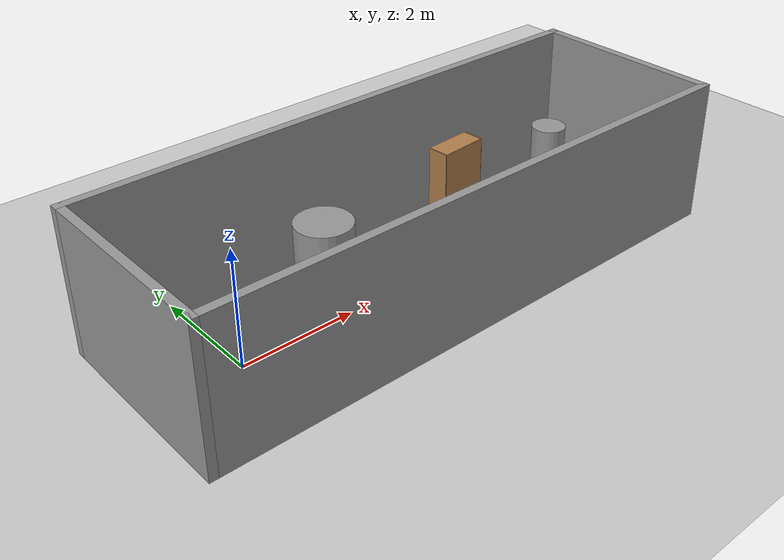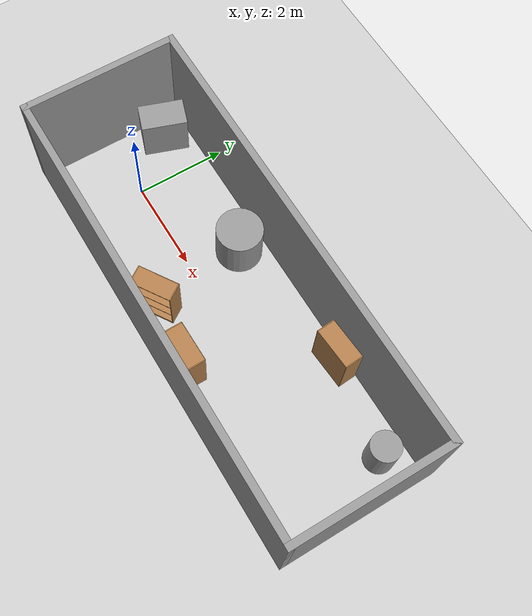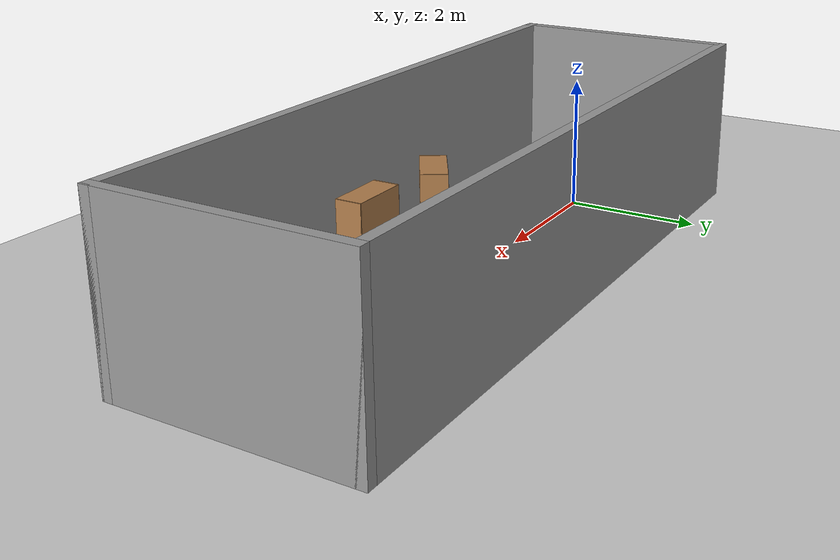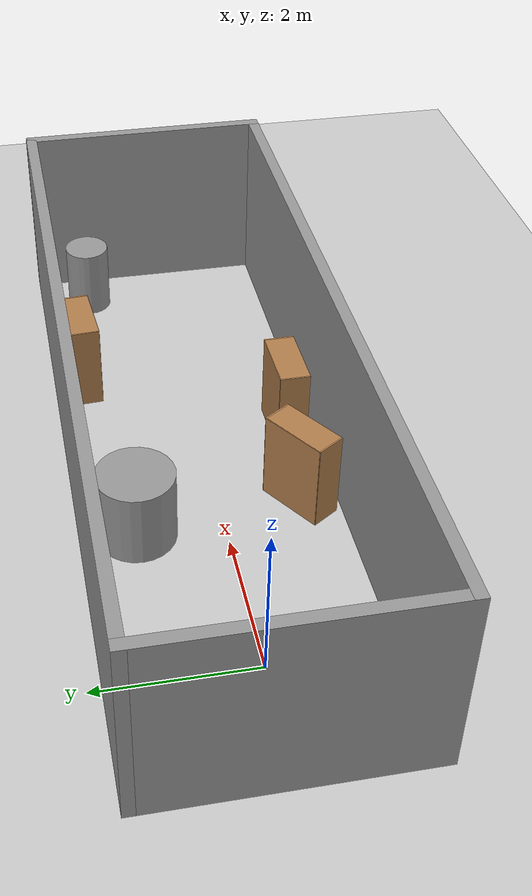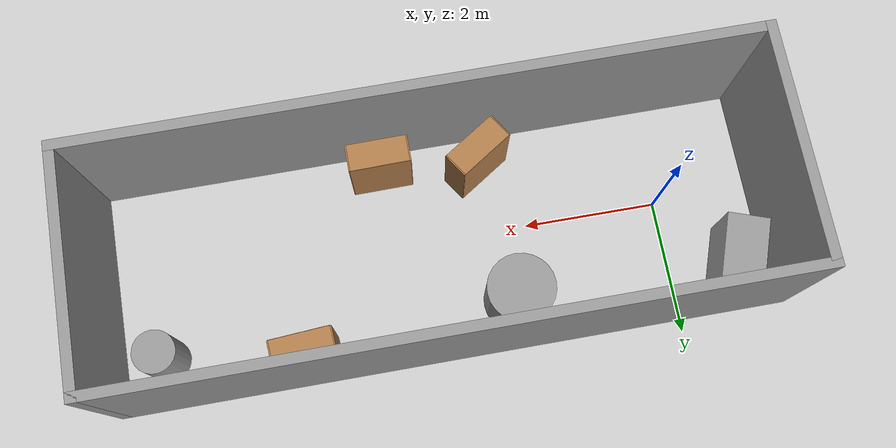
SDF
<sdf version="1.7">
 <world name="default">
  <light name="sun" type="directional">
   <pose>0 0 10 0 -0 0</pose>
   <diffuse>0.8 0.8 0.8 1</diffuse>
   <specular>0.2 0.2 0.2 1</specular>
   <attenuation>
    <range>1000</range>
    <constant>0.9</constant>
    <linear>0.01</linear>
    <quadratic>0.001</quadratic>
   </attenuation>
   <direction>-0.5 0.1 -0.9</direction>
   <spot><inner_angle>0</inner_angle><outer_angle>0</outer_angle><falloff>0</falloff></spot>
  </light>
  <model name="ground_plane">
   <static>1</static>
   <link name="link">
    <collision name="collision">
     <geometry><plane><normal>0 0 1</normal><size>100 100</size></plane></geometry>
     <surface>
      <contact><collide_bitmask>65535</collide_bitmask></contact>
      <friction><ode><mu>100</mu><mu2>50</mu2></ode></friction>
     </surface>
    </collision>
    <visual name="visual">
     <cast_shadows>0</cast_shadows>
     <geometry><plane><normal>0 0 1</normal><size>100 100</size></plane></geometry>
     <material>
      <script><uri>file://media/materials/scripts/gazebo.material</uri><name>Gazebo/Grey</name></script>
     </material>
    </visual>
   </link>
  </model>
  <gravity>0 0 -9.8</gravity>
  <magnetic_field>6e-06 2.3e-05 -4.2e-05</magnetic_field>
  <atmosphere type="adiabatic"/>
  <physics type="ode">
   <max_step_size>0.001</max_step_size>
   <real_time_factor>1</real_time_factor>
   <real_time_update_rate>1000</real_time_update_rate>
  </physics>
  <scene><ambient>0.4 0.4 0.4 1</ambient><background>0.7 0.7 0.7 1</background><shadows>1</shadows></scene>
  <spherical_coordinates>
   <surface_model>EARTH_WGS84</surface_model>
   <latitude_deg>0</latitude_deg>
   <longitude_deg>0</longitude_deg>
   <elevation>0</elevation>
   <heading_deg>0</heading_deg>
  </spherical_coordinates>
  <model name="corridor">
   <pose>3.39268 0.026906 0 0 0 -1.5708</pose>
   <link name="Wall_10">
    <collision name="Wall_10_Collision">
     <geometry><box><size>3.5 0.15 2.5</size></box></geometry>
     <pose>0 0 1.25 0 -0 0</pose>
    </collision>
    <visual name="Wall_10_Visual">
     <pose>0 0 1.25 0 -0 0</pose>
     <geometry><box><size>3.5 0.15 2.5</size></box></geometry>
     <material>
      <script><uri>file://media/materials/scripts/gazebo.material</uri><name>Gazebo/Grey</name></script>
      <ambient>1 1 1 1</ambient>
     </material>
     <meta><layer>0</layer></meta>
    </visual>
    <pose>-0.053915 -4.925 0 0 -0 3.14159</pose>
   </link>
   <link name="Wall_3">
    <collision name="Wall_3_Collision">
     <geometry><box><size>10 0.15 2.5</size></box></geometry>
     <pose>0 0 1.25 0 -0 0</pose>
    </collision>
    <visual name="Wall_3_Visual">
     <pose>0 0 1.25 0 -0 0</pose>
     <geometry><box><size>10 0.15 2.5</size></box></geometry>
     <material>
      <script><uri>file://media/materials/scripts/gazebo.material</uri><name>Gazebo/Grey</name></script>
      <ambient>1 1 1 1</ambient>
     </material>
     <meta><layer>0</layer></meta>
    </visual>
    <pose>-1.72891 0 0 0 -0 -1.5708</pose>
   </link>
   <link name="Wall_8">
    <collision name="Wall_8_Collision">
     <geometry><box><size>3.5 0.15 2.5</size></box></geometry>
     <pose>0 0 1.25 0 -0 0</pose>
    </collision>
    <visual name="Wall_8_Visual">
     <pose>0 0 1.25 0 -0 0</pose>
     <geometry><box><size>3.5 0.15 2.5</size></box></geometry>
     <material>
      <script><uri>file://media/materials/scripts/gazebo.material</uri><name>Gazebo/Grey</name></script>
      <ambient>1 1 1 1</ambient>
     </material>
     <meta><layer>0</layer></meta>
    </visual>
    <pose>-0.053915 4.925 0 0 -0 0</pose>
   </link>
   <link name="Wall_9">
    <collision name="Wall_9_Collision">
     <geometry><box><size>10 0.15 2.5</size></box></geometry>
     <pose>0 0 1.25 0 -0 0</pose>
    </collision>
    <visual name="Wall_9_Visual">
     <pose>0 0 1.25 0 -0 0</pose>
     <geometry><box><size>10 0.15 2.5</size></box></geometry>
     <material>
      <script><uri>file://media/materials/scripts/gazebo.material</uri><name>Gazebo/Grey</name></script>
      <ambient>1 1 1 1</ambient>
     </material>
     <meta><layer>0</layer></meta>
    </visual>
    <pose>1.62109 0 0 0 -0 -1.5708</pose>
   </link>
   <static>1</static>
  </model>
  <model name="bookshelf">
   <static>1</static>
   <link name="link">
    <inertial><mass>1</mass></inertial>
    <collision name="back">
     <pose>0 0.005 0.6 0 -0 0</pose>
     <geometry><box><size>0.9 0.01 1.2</size></box></geometry>
    </collision>
    <visual name="visual1">
     <pose>0 0.005 0.6 0 -0 0</pose>
     <geometry><box><size>0.9 0.01 1.2</size></box></geometry>
     <material>
      <script><uri>file://media/materials/scripts/gazebo.material</uri><name>Gazebo/Wood</name></script>
     </material>
    </visual>
    <collision name="left_side">
     <pose>0.45 -0.195 0.6 0 -0 0</pose>
     <geometry><box><size>0.02 0.4 1.2</size></box></geometry>
    </collision>
    <visual name="visual2">
     <pose>0.45 -0.195 0.6 0 -0 0</pose>
     <geometry><box><size>0.02 0.4 1.2</size></box></geometry>
     <material>
      <script><uri>file://media/materials/scripts/gazebo.material</uri><name>Gazebo/Wood</name></script>
     </material>
    </visual>
    <collision name="right_side">
     <pose>-0.45 -0.195 0.6 0 -0 0</pose>
     <geometry><box><size>0.02 0.4 1.2</size></box></geometry>
    </collision>
    <visual name="visual3">
     <pose>-0.45 -0.195 0.6 0 -0 0</pose>
     <geometry><box><size>0.02 0.4 1.2</size></box></geometry>
     <material>
      <script><uri>file://media/materials/scripts/gazebo.material</uri><name>Gazebo/Wood</name></script>
     </material>
    </visual>
    <collision name="bottom">
     <pose>0 -0.195 0.03 0 -0 0</pose>
     <geometry><box><size>0.88 0.4 0.06</size></box></geometry>
    </collision>
    <visual name="visual4">
     <pose>0 -0.195 0.03 0 -0 0</pose>
     <geometry><box><size>0.88 0.4 0.06</size></box></geometry>
     <material>
      <script><uri>file://media/materials/scripts/gazebo.material</uri><name>Gazebo/Wood</name></script>
     </material>
    </visual>
    <collision name="top">
     <pose>0 -0.195 1.19 0 -0 0</pose>
     <geometry><box><size>0.88 0.4 0.02</size></box></geometry>
    </collision>
    <visual name="visual5">
     <pose>0 -0.195 1.19 0 -0 0</pose>
     <geometry><box><size>0.88 0.4 0.02</size></box></geometry>
     <material>
      <script><uri>file://media/materials/scripts/gazebo.material</uri><name>Gazebo/Wood</name></script>
     </material>
    </visual>
    <collision name="low_shelf">
     <pose>0 -0.195 0.43 0 -0 0</pose>
     <geometry><box><size>0.88 0.4 0.02</size></box></geometry>
    </collision>
    <visual name="visual6">
     <pose>0 -0.195 0.43 0 -0 0</pose>
     <geometry><box><size>0.88 0.4 0.02</size></box></geometry>
     <material>
      <script><uri>file://media/materials/scripts/gazebo.material</uri><name>Gazebo/Wood</name></script>
     </material>
    </visual>
    <collision name="high_shelf">
     <pose>0 -0.195 0.8 0 -0 0</pose>
     <geometry><box><size>0.88 0.4 0.02</size></box></geometry>
    </collision>
    <visual name="visual7">
     <pose>0 -0.195 0.8 0 -0 0</pose>
     <geometry><box><size>0.88 0.4 0.02</size></box></geometry>
     <material>
      <script><uri>file://media/materials/scripts/gazebo.material</uri><name>Gazebo/Wood</name></script>
     </material>
    </visual>
   </link>
   <pose>5.54397 1.23318 0 0 0 -3.07423</pose>
  </model>
  <model name="bookshelf_0">
   <static>1</static>
   <link name="link">
    <inertial><mass>1</mass></inertial>
    <collision name="back">
     <pose>0 0.005 0.6 0 -0 0</pose>
     <geometry><box><size>0.9 0.01 1.2</size></box></geometry>
    </collision>
    <visual name="visual1">
     <pose>0 0.005 0.6 0 -0 0</pose>
     <geometry><box><size>0.9 0.01 1.2</size></box></geometry>
     <material>
      <script><uri>file://media/materials/scripts/gazebo.material</uri><name>Gazebo/Wood</name></script>
     </material>
    </visual>
    <collision name="left_side">
     <pose>0.45 -0.195 0.6 0 -0 0</pose>
     <geometry><box><size>0.02 0.4 1.2</size></box></geometry>
    </collision>
    <visual name="visual2">
     <pose>0.45 -0.195 0.6 0 -0 0</pose>
     <geometry><box><size>0.02 0.4 1.2</size></box></geometry>
     <material>
      <script><uri>file://media/materials/scripts/gazebo.material</uri><name>Gazebo/Wood</name></script>
     </material>
    </visual>
    <collision name="right_side">
     <pose>-0.45 -0.195 0.6 0 -0 0</pose>
     <geometry><box><size>0.02 0.4 1.2</size></box></geometry>
    </collision>
    <visual name="visual3">
     <pose>-0.45 -0.195 0.6 0 -0 0</pose>
     <geometry><box><size>0.02 0.4 1.2</size></box></geometry>
     <material>
      <script><uri>file://media/materials/scripts/gazebo.material</uri><name>Gazebo/Wood</name></script>
     </material>
    </visual>
    <collision name="bottom">
     <pose>0 -0.195 0.03 0 -0 0</pose>
     <geometry><box><size>0.88 0.4 0.06</size></box></geometry>
    </collision>
    <visual name="visual4">
     <pose>0 -0.195 0.03 0 -0 0</pose>
     <geometry><box><size>0.88 0.4 0.06</size></box></geometry>
     <material>
      <script><uri>file://media/materials/scripts/gazebo.material</uri><name>Gazebo/Wood</name></script>
     </material>
    </visual>
    <collision name="top">
     <pose>0 -0.195 1.19 0 -0 0</pose>
     <geometry><box><size>0.88 0.4 0.02</size></box></geometry>
    </collision>
    <visual name="visual5">
     <pose>0 -0.195 1.19 0 -0 0</pose>
     <geometry><box><size>0.88 0.4 0.02</size></box></geometry>
     <material>
      <script><uri>file://media/materials/scripts/gazebo.material</uri><name>Gazebo/Wood</name></script>
     </material>
    </visual>
    <collision name="low_shelf">
     <pose>0 -0.195 0.43 0 -0 0</pose>
     <geometry><box><size>0.88 0.4 0.02</size></box></geometry>
    </collision>
    <visual name="visual6">
     <pose>0 -0.195 0.43 0 -0 0</pose>
     <geometry><box><size>0.88 0.4 0.02</size></box></geometry>
     <material>
      <script><uri>file://media/materials/scripts/gazebo.material</uri><name>Gazebo/Wood</name></script>
     </material>
    </visual>
    <collision name="high_shelf">
     <pose>0 -0.195 0.8 0 -0 0</pose>
     <geometry><box><size>0.88 0.4 0.02</size></box></geometry>
    </collision>
    <visual name="visual7">
     <pose>0 -0.195 0.8 0 -0 0</pose>
     <geometry><box><size>0.88 0.4 0.02</size></box></geometry>
     <material>
      <script><uri>file://media/materials/scripts/gazebo.material</uri><name>Gazebo/Wood</name></script>
     </material>
    </visual>
   </link>
   <pose>4.04178 -0.97208 0 0 -0 0.010569</pose>
  </model>
  <model name="unit_box">
   <pose>-0.93058 1.10742 0.5 0 -0 -0.334426</pose>
   <link name="link">
    <inertial>
     <mass>1</mass>
     <inertia>
      <ixx>0.166667</ixx>
      <ixy>0</ixy>
      <ixz>0</ixz>
      <iyy>0.166667</iyy>
      <iyz>0</iyz>
      <izz>0.166667</izz>
     </inertia>
    </inertial>
    <collision name="collision"><geometry><box><size>0.616112 1 1</size></box></geometry></collision>
    <visual name="visual">
     <geometry><box><size>0.616112 1 1</size></box></geometry>
     <material>
      <script><name>Gazebo/Grey</name><uri>file://media/materials/scripts/gazebo.material</uri></script>
     </material>
    </visual>
   </link>
  </model>
  <model name="unit_cylinder">
   <pose>7.6063 1.10026 0.499992 0 -0 0</pose>
   <link name="link">
    <inertial>
     <mass>1</mass>
     <inertia><ixx>0.145833</ixx><ixy>0</ixy><ixz>0</ixz><iyy>0.145833</iyy><iyz>0</iyz><izz>0.125</izz></inertia>
    </inertial>
    <collision name="collision">
     <geometry><cylinder><radius>0.31275</radius><length>1</length></cylinder></geometry>
    </collision>
    <visual name="visual">
     <geometry><cylinder><radius>0.31275</radius><length>1</length></cylinder></geometry>
     <material>
      <script><name>Gazebo/Grey</name><uri>file://media/materials/scripts/gazebo.material</uri></script>
     </material>
    </visual>
   </link>
  </model>
  <model name="bookshelf_0_clone">
   <static>1</static>
   <link name="link">
    <inertial><mass>1</mass></inertial>
    <collision name="back">
     <pose>0 0.005 0.6 0 -0 0</pose>
     <geometry><box><size>0.9 0.01 1.2</size></box></geometry>
    </collision>
    <visual name="visual1">
     <pose>0 0.005 0.6 0 -0 0</pose>
     <geometry><box><size>0.9 0.01 1.2</size></box></geometry>
     <material>
      <script><uri>file://media/materials/scripts/gazebo.material</uri><name>Gazebo/Wood</name></script>
     </material>
    </visual>
    <collision name="left_side">
     <pose>0.45 -0.195 0.6 0 -0 0</pose>
     <geometry><box><size>0.02 0.4 1.2</size></box></geometry>
    </collision>
    <visual name="visual2">
     <pose>0.45 -0.195 0.6 0 -0 0</pose>
     <geometry><box><size>0.02 0.4 1.2</size></box></geometry>
     <material>
      <script><uri>file://media/materials/scripts/gazebo.material</uri><name>Gazebo/Wood</name></script>
     </material>
    </visual>
    <collision name="right_side">
     <pose>-0.45 -0.195 0.6 0 -0 0</pose>
     <geometry><box><size>0.02 0.4 1.2</size></box></geometry>
    </collision>
    <visual name="visual3">
     <pose>-0.45 -0.195 0.6 0 -0 0</pose>
     <geometry><box><size>0.02 0.4 1.2</size></box></geometry>
     <material>
      <script><uri>file://media/materials/scripts/gazebo.material</uri><name>Gazebo/Wood</name></script>
     </material>
    </visual>
    <collision name="bottom">
     <pose>0 -0.195 0.03 0 -0 0</pose>
     <geometry><box><size>0.88 0.4 0.06</size></box></geometry>
    </collision>
    <visual name="visual4">
     <pose>0 -0.195 0.03 0 -0 0</pose>
     <geometry><box><size>0.88 0.4 0.06</size></box></geometry>
     <material>
      <script><uri>file://media/materials/scripts/gazebo.material</uri><name>Gazebo/Wood</name></script>
     </material>
    </visual>
    <collision name="top">
     <pose>0 -0.195 1.19 0 -0 0</pose>
     <geometry><box><size>0.88 0.4 0.02</size></box></geometry>
    </collision>
    <visual name="visual5">
     <pose>0 -0.195 1.19 0 -0 0</pose>
     <geometry><box><size>0.88 0.4 0.02</size></box></geometry>
     <material>
      <script><uri>file://media/materials/scripts/gazebo.material</uri><name>Gazebo/Wood</name></script>
     </material>
    </visual>
    <collision name="low_shelf">
     <pose>0 -0.195 0.43 0 -0 0</pose>
     <geometry><box><size>0.88 0.4 0.02</size></box></geometry>
    </collision>
    <visual name="visual6">
     <pose>0 -0.195 0.43 0 -0 0</pose>
     <geometry><box><size>0.88 0.4 0.02</size></box></geometry>
     <material>
      <script><uri>file://media/materials/scripts/gazebo.material</uri><name>Gazebo/Wood</name></script>
     </material>
    </visual>
    <collision name="high_shelf">
     <pose>0 -0.195 0.8 0 -0 0</pose>
     <geometry><box><size>0.88 0.4 0.02</size></box></geometry>
    </collision>
    <visual name="visual7">
     <pose>0 -0.195 0.8 0 -0 0</pose>
     <geometry><box><size>0.88 0.4 0.02</size></box></geometry>
     <material>
      <script><uri>file://media/materials/scripts/gazebo.material</uri><name>Gazebo/Wood</name></script>
     </material>
    </visual>
   </link>
   <pose>2.48771 -0.867111 0 0 -0 0.577542</pose>
  </model>
  <model name="unit_cylinder_0">
   <pose>2.35112 1.10101 0.499997 3e-06 4e-06 -0</pose>
   <link name="link">
    <inertial>
     <mass>1</mass>
     <inertia><ixx>0.145833</ixx><ixy>0</ixy><ixz>0</ixz><iyy>0.145833</iyy><iyz>0</iyz><izz>0.125</izz></inertia>
    </inertial>
    <collision name="collision">
     <geometry><cylinder><radius>0.5</radius><length>1</length></cylinder></geometry>
    </collision>
    <visual name="visual">
     <geometry><cylinder><radius>0.5</radius><length>1</length></cylinder></geometry>
     <material>
      <script><name>Gazebo/Grey</name><uri>file://media/materials/scripts/gazebo.material</uri></script>
     </material>
    </visual>
   </link>
  </model>
 </world>
</sdf>
